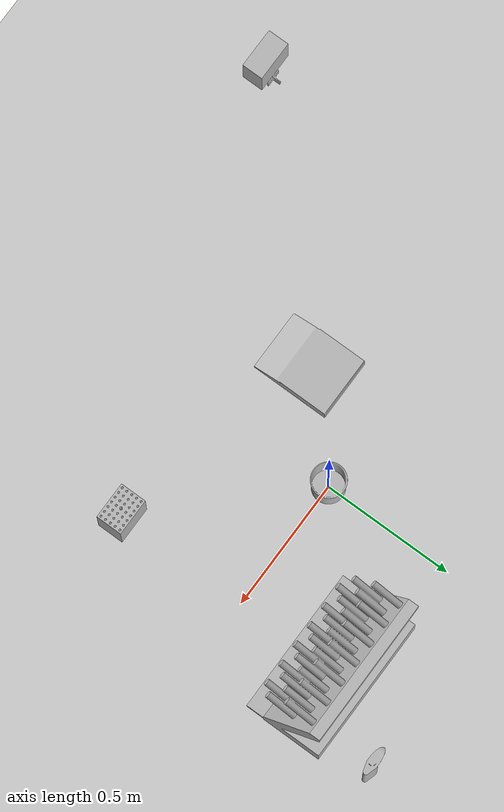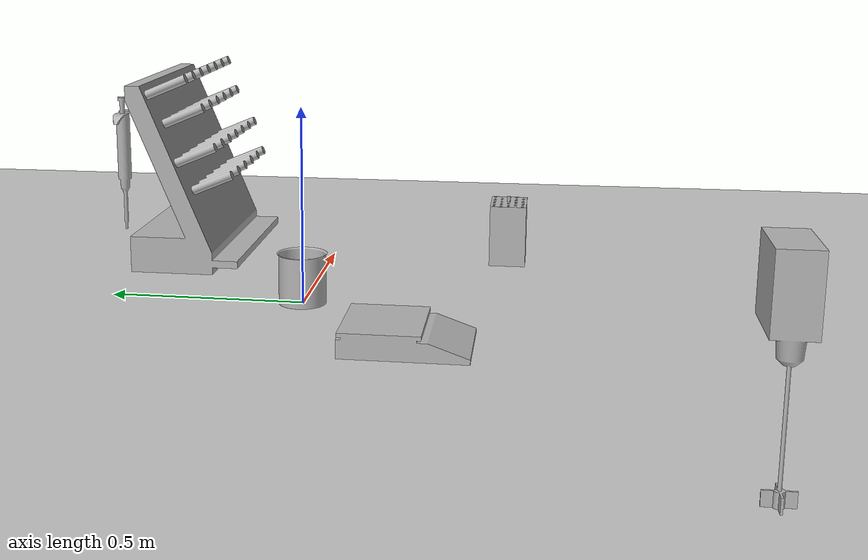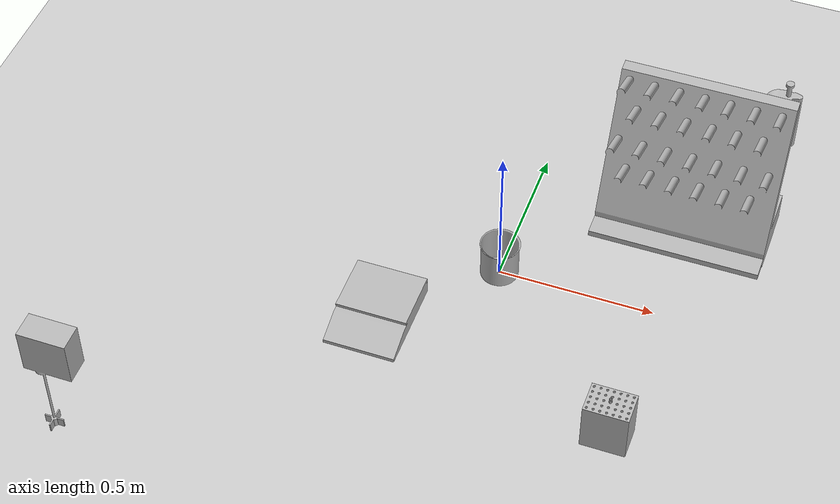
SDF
<sdf version="1.7">
 <physics name="1ms" type="ignored">
  <max_step_size>0.001</max_step_size>
  <real_time_factor>1.0</real_time_factor>
 </physics>
 <world name="car_world">
  <plugin filename="gz-sim-physics-system" name="gz::sim::systems::Physics"/>
  <plugin filename="gz-sim-user-commands-system" name="gz::sim::systems::UserCommands"/>
  <plugin filename="gz-sim-scene-broadcaster-system" name="gz::sim::systems::SceneBroadcaster"/>
  <light type="directional" name="sun">
   <pose>0 0 10 0 0 0</pose>
   <diffuse>0.8 0.8 0.8 1</diffuse>
   <specular>0.2 0.2 0.2 1</specular>
   <attenuation>
    <range>1000</range>
    <constant>0.9</constant>
    <linear>0.01</linear>
    <quadratic>0.001</quadratic>
   </attenuation>
   <direction>-0.5 0.1 -0.9</direction>
  </light>
  <model name="ground_plane">
   <static>true</static>
   <link name="link">
    <collision name="collision"><geometry><plane><normal>0 0 1</normal></plane></geometry></collision>
    <visual name="visual">
     <geometry><plane><normal>0 0 1</normal><size>100 100</size></plane></geometry>
     <material>
      <ambient>0.8 0.8 0.8 1</ambient>
      <diffuse>0.8 0.8 0.8 1</diffuse>
      <specular>0.8 0.8 0.8 1</specular>
     </material>
    </visual>
   </link>
  </model>
  <model name="scale">
   <pose>-0.3 -0.3 0 0 0 0</pose>
   <static>1</static>
   <link name="link">
    <collision name="collision">
     <geometry><mesh><uri>meshes/scale.stl</uri><scale>1 1 1</scale></mesh></geometry>
    </collision>
    <visual name="visual">
     <geometry><mesh><uri>meshes/scale.stl</uri><scale>1 1 1</scale></mesh></geometry>
    </visual>
   </link>
  </model>
  <model name="tip">
   <pose>0.5 -0.5 0.036 0 0 0</pose>
   <static>1</static>
   <link name="link">
    <collision name="collision">
     <geometry><mesh><uri>meshes/tip.stl</uri><scale>1 1 1</scale></mesh></geometry>
    </collision>
    <visual name="visual"><geometry><mesh><uri>meshes/tip.stl</uri><scale>1 1 1</scale></mesh></geometry></visual>
   </link>
  </model>
  <model name="tip_box">
   <pose>0.5 -0.5 0 0 0 0</pose>
   <static>1</static>
   <link name="link">
    <collision name="collision">
     <geometry><mesh><uri>meshes/tip_box.stl</uri><scale>1 1 1</scale></mesh></geometry>
    </collision>
    <visual name="visual">
     <geometry><mesh><uri>meshes/tip_box.stl</uri><scale>1 1 1</scale></mesh></geometry>
    </visual>
   </link>
  </model>
  <model name="stirrer">
   <pose>-1 -1 0 0 0 0</pose>
   <static>1</static>
   <link name="link">
    <collision name="collision">
     <geometry><mesh><uri>meshes/stirrer.stl</uri><scale>1 1 1</scale></mesh></geometry>
    </collision>
    <visual name="visual">
     <geometry><mesh><uri>meshes/stirrer.stl</uri><scale>1 1 1</scale></mesh></geometry>
    </visual>
   </link>
  </model>
  <model name="dryer">
   <pose>0.5 0.5 0 0 0 -1.5708</pose>
   <static>1</static>
   <link name="link">
    <collision name="collision">
     <geometry><mesh><uri>meshes/dryer.stl</uri><scale>1 1 1</scale></mesh></geometry>
    </collision>
    <visual name="visual">
     <geometry><mesh><uri>meshes/dryer.stl</uri><scale>1 1 1</scale></mesh></geometry>
    </visual>
   </link>
  </model>
  <model name="dosator">
   <pose>0.7 0.7 0 0 0 0</pose>
   <static>1</static>
   <link name="link">
    <collision name="collision">
     <geometry><mesh><uri>meshes/dosator.stl</uri><scale>1 1 1</scale></mesh></geometry>
    </collision>
    <visual name="visual">
     <geometry><mesh><uri>meshes/dosator.stl</uri><scale>1 1 1</scale></mesh></geometry>
    </visual>
   </link>
  </model>
  <model name="beaker_2l">
   <static>1</static>
   <link name="link">
    <collision name="collision">
     <geometry><mesh><uri>meshes/beaker.stl</uri><scale>1 1 1</scale></mesh></geometry>
    </collision>
    <visual name="visual">
     <geometry><mesh><uri>meshes/beaker.stl</uri><scale>1 1 1</scale></mesh></geometry>
    </visual>
   </link>
  </model>
 </world>
</sdf>
